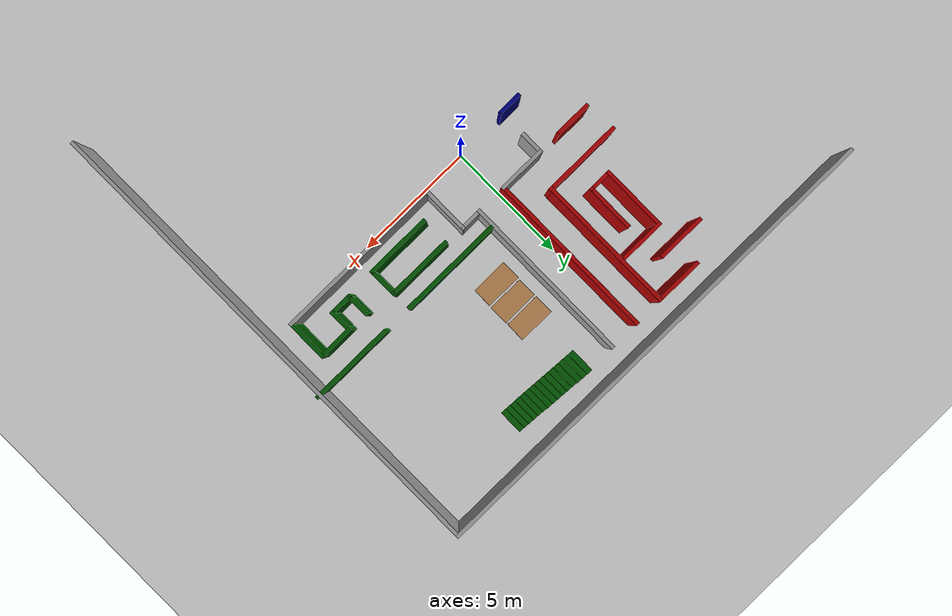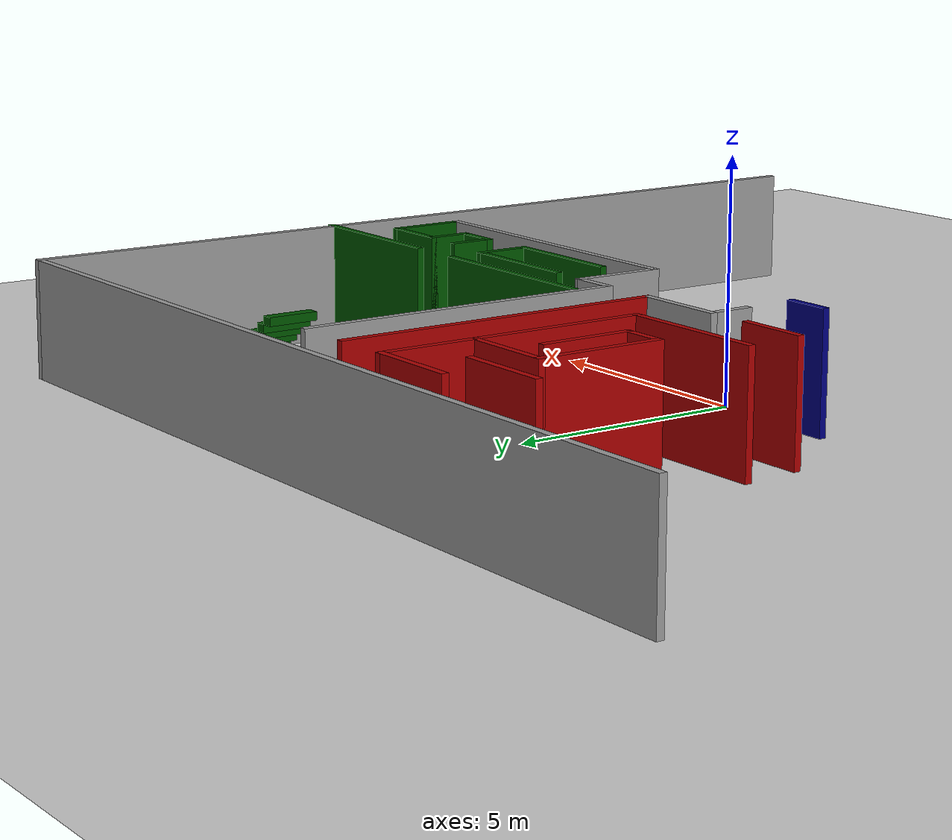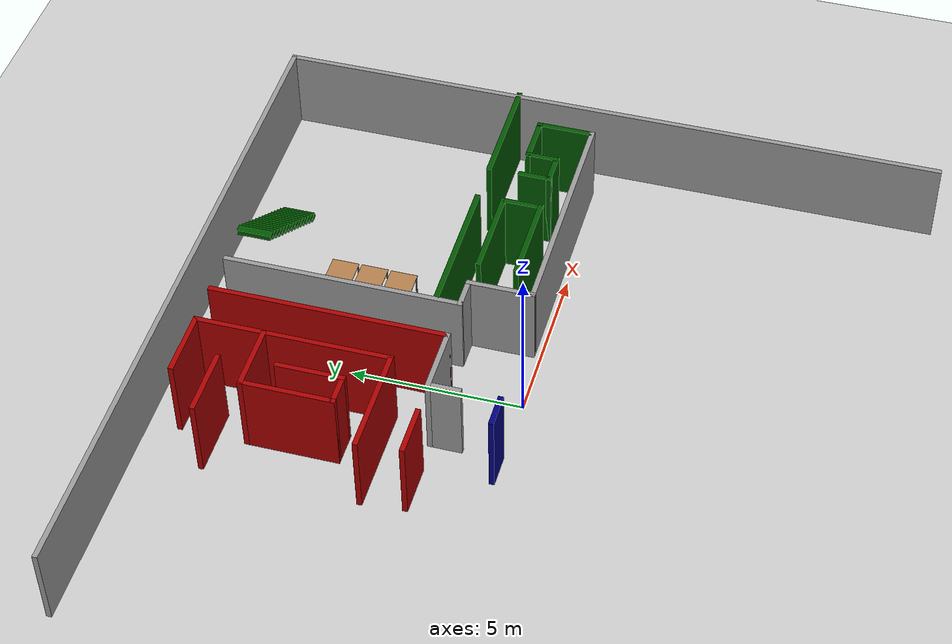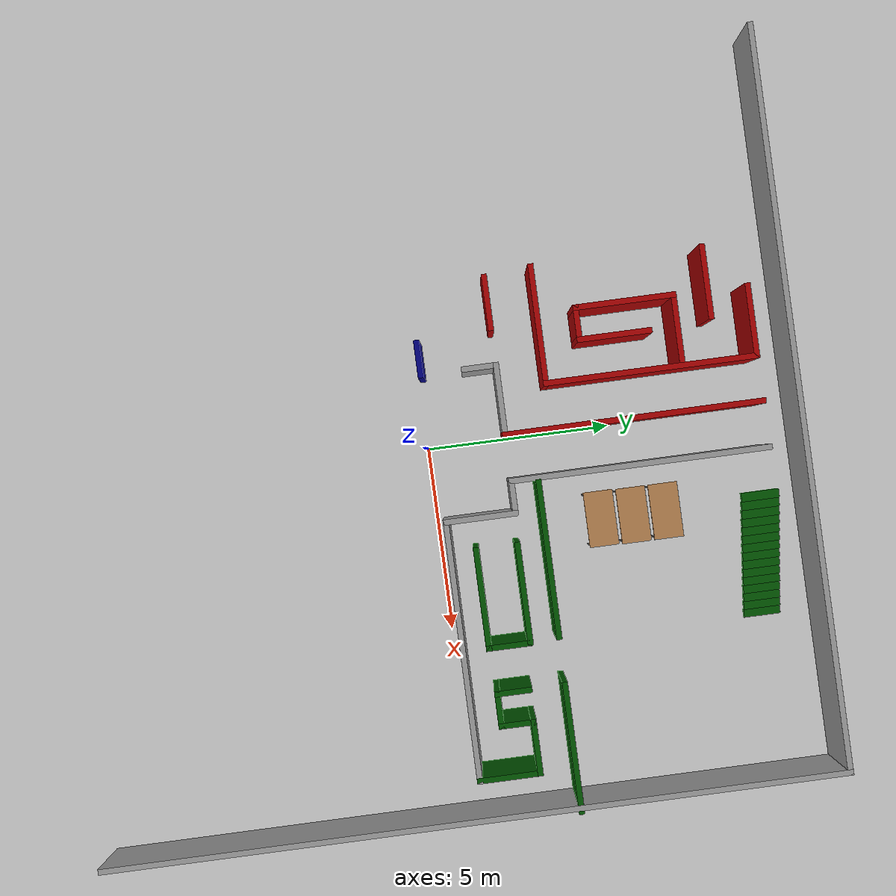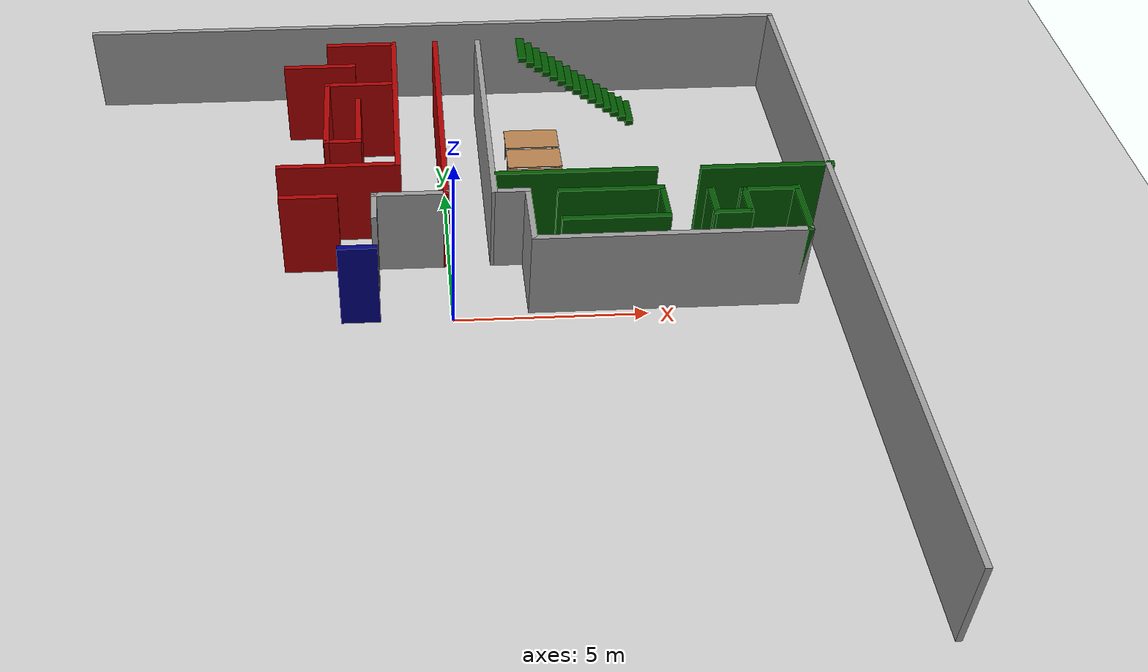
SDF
<sdf version="1.7">
 <world name="default">
  <model name="ground_plane">
   <static>1</static>
   <link name="link">
    <collision name="collision">
     <geometry><plane><normal>0 0 1</normal><size>100 100</size></plane></geometry>
     <surface><friction><ode><mu>100</mu><mu2>50</mu2></ode></friction></surface>
    </collision>
    <visual name="visual">
     <cast_shadows>0</cast_shadows>
     <geometry><plane><normal>0 0 1</normal><size>100 100</size></plane></geometry>
     <material>
      <script><uri>file://media/materials/scripts/gazebo.material</uri><name>Gazebo/Grey</name></script>
     </material>
    </visual>
   </link>
  </model>
  <model name="labyrinthe">
   <pose>-0.001061 -0.00174 0 0 -0 0</pose>
   <link name="Stairs_1">
    <visual name="Stairs_1_Visual_0">
     <pose>5.63847 8.54811 0.083333 0 -0 -1.5708</pose>
     <geometry><box><size>1 0.233333 0.166667</size></box></geometry>
     <material>
      <script><uri>file://media/materials/scripts/gazebo.material</uri><name>Gazebo/Grey</name></script>
      <ambient>0 0.333333 0 1</ambient>
     </material>
     <meta><layer>0</layer></meta>
    </visual>
    <collision name="Stairs_1_Collision_0">
     <geometry><box><size>1 0.233333 0.166667</size></box></geometry>
     <pose>5.63847 8.54811 0.083333 0 -0 -1.5708</pose>
    </collision>
    <visual name="Stairs_1_Visual_1">
     <pose>5.40514 8.54811 0.25 0 -0 -1.5708</pose>
     <geometry><box><size>1 0.233333 0.166667</size></box></geometry>
     <material>
      <script><uri>file://media/materials/scripts/gazebo.material</uri><name>Gazebo/Grey</name></script>
      <ambient>0 0.333333 0 1</ambient>
     </material>
     <meta><layer>0</layer></meta>
    </visual>
    <collision name="Stairs_1_Collision_1">
     <geometry><box><size>1 0.233333 0.166667</size></box></geometry>
     <pose>5.40514 8.54811 0.25 0 -0 -1.5708</pose>
    </collision>
    <visual name="Stairs_1_Visual_2">
     <pose>5.1718 8.54811 0.416667 0 -0 -1.5708</pose>
     <geometry><box><size>1 0.233333 0.166667</size></box></geometry>
     <material>
      <script><uri>file://media/materials/scripts/gazebo.material</uri><name>Gazebo/Grey</name></script>
      <ambient>0 0.333333 0 1</ambient>
     </material>
     <meta><layer>0</layer></meta>
    </visual>
    <collision name="Stairs_1_Collision_2">
     <geometry><box><size>1 0.233333 0.166667</size></box></geometry>
     <pose>5.1718 8.54811 0.416667 0 -0 -1.5708</pose>
    </collision>
    <visual name="Stairs_1_Visual_3">
     <pose>4.93847 8.54811 0.583333 0 -0 -1.5708</pose>
     <geometry><box><size>1 0.233333 0.166667</size></box></geometry>
     <material>
      <script><uri>file://media/materials/scripts/gazebo.material</uri><name>Gazebo/Grey</name></script>
      <ambient>0 0.333333 0 1</ambient>
     </material>
     <meta><layer>0</layer></meta>
    </visual>
    <collision name="Stairs_1_Collision_3">
     <geometry><box><size>1 0.233333 0.166667</size></box></geometry>
     <pose>4.93847 8.54811 0.583333 0 -0 -1.5708</pose>
    </collision>
    <visual name="Stairs_1_Visual_4">
     <pose>4.70514 8.54811 0.75 0 -0 -1.5708</pose>
     <geometry><box><size>1 0.233333 0.166667</size></box></geometry>
     <material>
      <script><uri>file://media/materials/scripts/gazebo.material</uri><name>Gazebo/Grey</name></script>
      <ambient>0 0.333333 0 1</ambient>
     </material>
     <meta><layer>0</layer></meta>
    </visual>
    <collision name="Stairs_1_Collision_4">
     <geometry><box><size>1 0.233333 0.166667</size></box></geometry>
     <pose>4.70514 8.54811 0.75 0 -0 -1.5708</pose>
    </collision>
    <visual name="Stairs_1_Visual_5">
     <pose>4.4718 8.54811 0.916667 0 -0 -1.5708</pose>
     <geometry><box><size>1 0.233333 0.166667</size></box></geometry>
     <material>
      <script><uri>file://media/materials/scripts/gazebo.material</uri><name>Gazebo/Grey</name></script>
      <ambient>0 0.333333 0 1</ambient>
     </material>
     <meta><layer>0</layer></meta>
    </visual>
    <collision name="Stairs_1_Collision_5">
     <geometry><box><size>1 0.233333 0.166667</size></box></geometry>
     <pose>4.4718 8.54811 0.916667 0 -0 -1.5708</pose>
    </collision>
    <visual name="Stairs_1_Visual_6">
     <pose>4.23847 8.54811 1.08333 0 -0 -1.5708</pose>
     <geometry><box><size>1 0.233333 0.166667</size></box></geometry>
     <material>
      <script><uri>file://media/materials/scripts/gazebo.material</uri><name>Gazebo/Grey</name></script>
      <ambient>0 0.333333 0 1</ambient>
     </material>
     <meta><layer>0</layer></meta>
    </visual>
    <collision name="Stairs_1_Collision_6">
     <geometry><box><size>1 0.233333 0.166667</size></box></geometry>
     <pose>4.23847 8.54811 1.08333 0 -0 -1.5708</pose>
    </collision>
    <visual name="Stairs_1_Visual_7">
     <pose>4.00514 8.54811 1.25 0 -0 -1.5708</pose>
     <geometry><box><size>1 0.233333 0.166667</size></box></geometry>
     <material>
      <script><uri>file://media/materials/scripts/gazebo.material</uri><name>Gazebo/Grey</name></script>
      <ambient>0 0.333333 0 1</ambient>
     </material>
     <meta><layer>0</layer></meta>
    </visual>
    <collision name="Stairs_1_Collision_7">
     <geometry><box><size>1 0.233333 0.166667</size></box></geometry>
     <pose>4.00514 8.54811 1.25 0 -0 -1.5708</pose>
    </collision>
    <visual name="Stairs_1_Visual_8">
     <pose>3.77181 8.54811 1.41667 0 -0 -1.5708</pose>
     <geometry><box><size>1 0.233333 0.166667</size></box></geometry>
     <material>
      <script><uri>file://media/materials/scripts/gazebo.material</uri><name>Gazebo/Grey</name></script>
      <ambient>0 0.333333 0 1</ambient>
     </material>
     <meta><layer>0</layer></meta>
    </visual>
    <collision name="Stairs_1_Collision_8">
     <geometry><box><size>1 0.233333 0.166667</size></box></geometry>
     <pose>3.77181 8.54811 1.41667 0 -0 -1.5708</pose>
    </collision>
    <visual name="Stairs_1_Visual_9">
     <pose>3.53847 8.54811 1.58333 0 -0 -1.5708</pose>
     <geometry><box><size>1 0.233333 0.166667</size></box></geometry>
     <material>
      <script><uri>file://media/materials/scripts/gazebo.material</uri><name>Gazebo/Grey</name></script>
      <ambient>0 0.333333 0 1</ambient>
     </material>
     <meta><layer>0</layer></meta>
    </visual>
    <collision name="Stairs_1_Collision_9">
     <geometry><box><size>1 0.233333 0.166667</size></box></geometry>
     <pose>3.53847 8.54811 1.58333 0 -0 -1.5708</pose>
    </collision>
    <visual name="Stairs_1_Visual_10">
     <pose>3.30514 8.54811 1.75 0 -0 -1.5708</pose>
     <geometry><box><size>1 0.233333 0.166667</size></box></geometry>
     <material>
      <script><uri>file://media/materials/scripts/gazebo.material</uri><name>Gazebo/Grey</name></script>
      <ambient>0 0.333333 0 1</ambient>
     </material>
     <meta><layer>0</layer></meta>
    </visual>
    <collision name="Stairs_1_Collision_10">
     <geometry><box><size>1 0.233333 0.166667</size></box></geometry>
     <pose>3.30514 8.54811 1.75 0 -0 -1.5708</pose>
    </collision>
    <visual name="Stairs_1_Visual_11">
     <pose>3.0718 8.54811 1.91667 0 -0 -1.5708</pose>
     <geometry><box><size>1 0.233333 0.166667</size></box></geometry>
     <material>
      <script><uri>file://media/materials/scripts/gazebo.material</uri><name>Gazebo/Grey</name></script>
      <ambient>0 0.333333 0 1</ambient>
     </material>
     <meta><layer>0</layer></meta>
    </visual>
    <collision name="Stairs_1_Collision_11">
     <geometry><box><size>1 0.233333 0.166667</size></box></geometry>
     <pose>3.0718 8.54811 1.91667 0 -0 -1.5708</pose>
    </collision>
    <visual name="Stairs_1_Visual_12">
     <pose>2.83847 8.54811 2.08333 0 -0 -1.5708</pose>
     <geometry><box><size>1 0.233333 0.166667</size></box></geometry>
     <material>
      <script><uri>file://media/materials/scripts/gazebo.material</uri><name>Gazebo/Grey</name></script>
      <ambient>0 0.333333 0 1</ambient>
     </material>
     <meta><layer>0</layer></meta>
    </visual>
    <collision name="Stairs_1_Collision_12">
     <geometry><box><size>1 0.233333 0.166667</size></box></geometry>
     <pose>2.83847 8.54811 2.08333 0 -0 -1.5708</pose>
    </collision>
    <visual name="Stairs_1_Visual_13">
     <pose>2.60514 8.54811 2.25 0 -0 -1.5708</pose>
     <geometry><box><size>1 0.233333 0.166667</size></box></geometry>
     <material>
      <script><uri>file://media/materials/scripts/gazebo.material</uri><name>Gazebo/Grey</name></script>
      <ambient>0 0.333333 0 1</ambient>
     </material>
     <meta><layer>0</layer></meta>
    </visual>
    <collision name="Stairs_1_Collision_13">
     <geometry><box><size>1 0.233333 0.166667</size></box></geometry>
     <pose>2.60514 8.54811 2.25 0 -0 -1.5708</pose>
    </collision>
    <visual name="Stairs_1_Visual_14">
     <pose>2.3718 8.54811 2.41667 0 -0 -1.5708</pose>
     <geometry><box><size>1 0.233333 0.166667</size></box></geometry>
     <material>
      <script><uri>file://media/materials/scripts/gazebo.material</uri><name>Gazebo/Grey</name></script>
      <ambient>0 0.333333 0 1</ambient>
     </material>
     <meta><layer>0</layer></meta>
    </visual>
    <collision name="Stairs_1_Collision_14">
     <geometry><box><size>1 0.233333 0.166667</size></box></geometry>
     <pose>2.3718 8.54811 2.41667 0 -0 -1.5708</pose>
    </collision>
   </link>
   <link name="Wall_123">
    <collision name="Wall_123_Collision">
     <geometry><box><size>1 0.15 2.5</size></box></geometry>
     <pose>0 0 1.25 0 -0 0</pose>
    </collision>
    <visual name="Wall_123_Visual">
     <pose>0 0 1.25 0 -0 0</pose>
     <geometry><box><size>1 0.15 2.5</size></box></geometry>
     <material>
      <script><uri>file://media/materials/scripts/gazebo.material</uri><name>Gazebo/Grey</name></script>
      <ambient>0 0 0.498039 1</ambient>
     </material>
     <meta><layer>0</layer></meta>
    </visual>
    <pose>-2.35877 0.113732 0 0 -0 3.14159</pose>
   </link>
   <link name="Wall_20">
    <collision name="Wall_20_Collision">
     <geometry><box><size>20 0.15 2.5</size></box></geometry>
     <pose>0 0 1.25 0 -0 0</pose>
    </collision>
    <visual name="Wall_20_Visual">
     <pose>0 0 1.25 0 -0 0</pose>
     <geometry><box><size>20 0.15 2.5</size></box></geometry>
     <material>
      <script><uri>file://media/materials/scripts/gazebo.material</uri><name>Gazebo/Grey</name></script>
      <ambient>0 0 0 1</ambient>
     </material>
     <meta><layer>0</layer></meta>
    </visual>
    <pose>-0.030043 9.94053 0 0 -0 0</pose>
   </link>
   <link name="Wall_21">
    <collision name="Wall_21_Collision">
     <geometry><box><size>20 0.15 2.5</size></box></geometry>
     <pose>0 0 1.25 0 -0 0</pose>
    </collision>
    <visual name="Wall_21_Visual">
     <pose>0 0 1.25 0 -0 0</pose>
     <geometry><box><size>20 0.15 2.5</size></box></geometry>
     <material>
      <script><uri>file://media/materials/scripts/gazebo.material</uri><name>Gazebo/Grey</name></script>
      <ambient>0 0 0 1</ambient>
     </material>
     <meta><layer>0</layer></meta>
    </visual>
    <pose>9.89496 0.015532 0 0 -0 -1.5708</pose>
   </link>
   <link name="Wall_260">
    <collision name="Wall_260_Collision">
     <geometry><box><size>7 0.15 2.5</size></box></geometry>
     <pose>0 0 1.25 0 -0 0</pose>
    </collision>
    <visual name="Wall_260_Visual">
     <pose>0 0 1.25 0 -0 0</pose>
     <geometry><box><size>7 0.15 2.5</size></box></geometry>
     <material>
      <script><uri>file://media/materials/scripts/gazebo.material</uri><name>Gazebo/Grey</name></script>
      <ambient>0 0 0 1</ambient>
     </material>
     <meta><layer>0</layer></meta>
    </visual>
    <pose>5.42013 0.26331 0 0 -0 0</pose>
   </link>
   <link name="Wall_261">
    <collision name="Wall_261_Collision">
     <geometry><box><size>1.75 0.15 2.5</size></box></geometry>
     <pose>0 0 1.25 0 -0 0</pose>
    </collision>
    <visual name="Wall_261_Visual">
     <pose>0 0 1.25 0 -0 0</pose>
     <geometry><box><size>1.75 0.15 2.5</size></box></geometry>
     <material>
      <script><uri>file://media/materials/scripts/gazebo.material</uri><name>Gazebo/Grey</name></script>
      <ambient>0 0.333333 0 1</ambient>
     </material>
     <meta><layer>0</layer></meta>
    </visual>
    <pose>8.84513 1.06331 0 0 -0 1.5708</pose>
   </link>
   <link name="Wall_262">
    <collision name="Wall_262_Collision">
     <geometry><box><size>1.5 0.15 2.5</size></box></geometry>
     <pose>0 0 1.25 0 -0 0</pose>
    </collision>
    <visual name="Wall_262_Visual">
     <pose>0 0 1.25 0 -0 0</pose>
     <geometry><box><size>1.5 0.15 2.5</size></box></geometry>
     <material>
      <script><uri>file://media/materials/scripts/gazebo.material</uri><name>Gazebo/Grey</name></script>
      <ambient>0 0.333333 0 1</ambient>
     </material>
     <meta><layer>0</layer></meta>
    </visual>
    <pose>8.17013 1.86331 0 0 -0 3.14159</pose>
   </link>
   <link name="Wall_263">
    <collision name="Wall_263_Collision">
     <geometry><box><size>1 0.15 2.5</size></box></geometry>
     <pose>0 0 1.25 0 -0 0</pose>
    </collision>
    <visual name="Wall_263_Visual">
     <pose>0 0 1.25 0 -0 0</pose>
     <geometry><box><size>1 0.15 2.5</size></box></geometry>
     <material>
      <script><uri>file://media/materials/scripts/gazebo.material</uri><name>Gazebo/Grey</name></script>
      <ambient>0 0.333333 0 1</ambient>
     </material>
     <meta><layer>0</layer></meta>
    </visual>
    <pose>7.49513 1.43831 0 0 -0 -1.5708</pose>
   </link>
   <link name="Wall_264">
    <collision name="Wall_264_Collision">
     <geometry><box><size>1 0.15 2.5</size></box></geometry>
     <pose>0 0 1.25 0 -0 0</pose>
    </collision>
    <visual name="Wall_264_Visual">
     <pose>0 0 1.25 0 -0 0</pose>
     <geometry><box><size>1 0.15 2.5</size></box></geometry>
     <material>
      <script><uri>file://media/materials/scripts/gazebo.material</uri><name>Gazebo/Grey</name></script>
      <ambient>0 0.333333 0 1</ambient>
     </material>
     <meta><layer>0</layer></meta>
    </visual>
    <pose>7.07013 1.01331 0 0 -0 3.14159</pose>
   </link>
   <link name="Wall_265">
    <collision name="Wall_265_Collision">
     <geometry><box><size>1 0.15 2.5</size></box></geometry>
     <pose>0 0 1.25 0 -0 0</pose>
    </collision>
    <visual name="Wall_265_Visual">
     <pose>0 0 1.25 0 -0 0</pose>
     <geometry><box><size>1 0.15 2.5</size></box></geometry>
     <material>
      <script><uri>file://media/materials/scripts/gazebo.material</uri><name>Gazebo/Grey</name></script>
      <ambient>0 0.333333 0 1</ambient>
     </material>
     <meta><layer>0</layer></meta>
    </visual>
    <pose>6.64513 1.43831 0 0 -0 1.5708</pose>
   </link>
   <link name="Wall_267">
    <collision name="Wall_267_Collision">
     <geometry><box><size>3.5 0.15 2.5</size></box></geometry>
     <pose>0 0 1.25 0 -0 0</pose>
    </collision>
    <visual name="Wall_267_Visual">
     <pose>0 0 1.25 0 -0 0</pose>
     <geometry><box><size>3.5 0.15 2.5</size></box></geometry>
     <material>
      <script><uri>file://media/materials/scripts/gazebo.material</uri><name>Gazebo/Grey</name></script>
      <ambient>0 0.333333 0 1</ambient>
     </material>
     <meta><layer>0</layer></meta>
    </visual>
    <pose>8.31191 2.80846 0 0 -0 0</pose>
   </link>
   <link name="Wall_269">
    <collision name="Wall_269_Collision">
     <geometry><box><size>4.25 0.15 2.5</size></box></geometry>
     <pose>0 0 1.25 0 -0 0</pose>
    </collision>
    <visual name="Wall_269_Visual">
     <pose>0 0 1.25 0 -0 0</pose>
     <geometry><box><size>4.25 0.15 2.5</size></box></geometry>
     <material>
      <script><uri>file://media/materials/scripts/gazebo.material</uri><name>Gazebo/Grey</name></script>
      <ambient>0 0.333333 0 1</ambient>
     </material>
     <meta><layer>0</layer></meta>
    </visual>
    <pose>3.31731 2.82169 0 0 -0 3.14159</pose>
   </link>
   <link name="Wall_271">
    <collision name="Wall_271_Collision">
     <geometry><box><size>2.75 0.15 2.5</size></box></geometry>
     <pose>0 0 1.25 0 -0 0</pose>
    </collision>
    <visual name="Wall_271_Visual">
     <pose>0 0 1.25 0 -0 0</pose>
     <geometry><box><size>2.75 0.15 2.5</size></box></geometry>
     <material>
      <script><uri>file://media/materials/scripts/gazebo.material</uri><name>Gazebo/Grey</name></script>
      <ambient>0 0.333333 0 1</ambient>
     </material>
     <meta><layer>0</layer></meta>
    </visual>
    <pose>4.12811 2.05464 0 0 -0 0</pose>
   </link>
   <link name="Wall_272">
    <collision name="Wall_272_Collision">
     <geometry><box><size>1.25 0.15 2.5</size></box></geometry>
     <pose>0 0 1.25 0 -0 0</pose>
    </collision>
    <visual name="Wall_272_Visual">
     <pose>0 0 1.25 0 -0 0</pose>
     <geometry><box><size>1.25 0.15 2.5</size></box></geometry>
     <material>
      <script><uri>file://media/materials/scripts/gazebo.material</uri><name>Gazebo/Grey</name></script>
      <ambient>0 0.333333 0 1</ambient>
     </material>
     <meta><layer>0</layer></meta>
    </visual>
    <pose>5.42811 1.50464 0 0 -0 -1.5708</pose>
   </link>
   <link name="Wall_273">
    <collision name="Wall_273_Collision">
     <geometry><box><size>2.75 0.15 2.5</size></box></geometry>
     <pose>0 0 1.25 0 -0 0</pose>
    </collision>
    <visual name="Wall_273_Visual">
     <pose>0 0 1.25 0 -0 0</pose>
     <geometry><box><size>2.75 0.15 2.5</size></box></geometry>
     <material>
      <script><uri>file://media/materials/scripts/gazebo.material</uri><name>Gazebo/Grey</name></script>
      <ambient>0 0.333333 0 1</ambient>
     </material>
     <meta><layer>0</layer></meta>
    </visual>
    <pose>4.12811 0.954637 0 0 -0 3.14159</pose>
   </link>
   <link name="Wall_34">
    <collision name="Wall_34_Collision">
     <geometry><box><size>2 0.15 2.5</size></box></geometry>
     <pose>0 0 1.25 0 -0 0</pose>
    </collision>
    <visual name="Wall_34_Visual">
     <pose>0 0 1.25 0 -0 0</pose>
     <geometry><box><size>2 0.15 2.5</size></box></geometry>
     <material>
      <script><uri>file://media/materials/scripts/gazebo.material</uri><name>Gazebo/Grey</name></script>
      <ambient>0 0 0 1</ambient>
     </material>
     <meta><layer>0</layer></meta>
    </visual>
    <pose>-1.00876 2.11373 0 0 -0 0</pose>
   </link>
   <link name="Wall_36">
    <collision name="Wall_36_Collision">
     <geometry><box><size>1 0.15 2.5</size></box></geometry>
     <pose>0 0 1.25 0 -0 0</pose>
    </collision>
    <visual name="Wall_36_Visual">
     <pose>0 0 1.25 0 -0 0</pose>
     <geometry><box><size>1 0.15 2.5</size></box></geometry>
     <material>
      <script><uri>file://media/materials/scripts/gazebo.material</uri><name>Gazebo/Grey</name></script>
      <ambient>0 0 0 1</ambient>
     </material>
     <meta><layer>0</layer></meta>
    </visual>
    <pose>-1.93376 1.68873 0 0 -0 -1.5708</pose>
   </link>
   <link name="Wall_51">
    <collision name="Wall_51_Collision">
     <geometry><box><size>1 0.15 2.5</size></box></geometry>
     <pose>0 0 1.25 0 -0 0</pose>
    </collision>
    <visual name="Wall_51_Visual">
     <pose>0 0 1.25 0 -0 0</pose>
     <geometry><box><size>1 0.15 2.5</size></box></geometry>
     <material>
      <script><uri>file://media/materials/scripts/gazebo.material</uri><name>Gazebo/Grey</name></script>
      <ambient>0 0 0 1</ambient>
     </material>
     <meta><layer>0</layer></meta>
    </visual>
    <pose>1.56989 2.11354 0 0 -0 3.14106</pose>
   </link>
   <link name="Wall_53">
    <collision name="Wall_53_Collision">
     <geometry><box><size>2 0.15 2.5</size></box></geometry>
     <pose>0 0 1.25 0 -0 0</pose>
    </collision>
    <visual name="Wall_53_Visual">
     <pose>0 0 1.25 0 -0 0</pose>
     <geometry><box><size>2 0.15 2.5</size></box></geometry>
     <material>
      <script><uri>file://media/materials/scripts/gazebo.material</uri><name>Gazebo/Grey</name></script>
      <ambient>0 0 0 1</ambient>
     </material>
     <meta><layer>0</layer></meta>
    </visual>
    <pose>1.99513 1.18831 0 0 -0 -1.5708</pose>
   </link>
   <link name="Wall_63">
    <collision name="Wall_63_Collision">
     <geometry><box><size>7 0.15 2.5</size></box></geometry>
     <pose>0 0 1.25 0 -0 0</pose>
    </collision>
    <visual name="Wall_63_Visual">
     <pose>0 0 1.25 0 -0 0</pose>
     <geometry><box><size>7 0.15 2.5</size></box></geometry>
     <material>
      <script><uri>file://media/materials/scripts/gazebo.material</uri><name>Gazebo/Grey</name></script>
      <ambient>0 0 0 1</ambient>
     </material>
     <meta><layer>0</layer></meta>
    </visual>
    <pose>1.14465 5.53876 0 0 -0 1.5708</pose>
   </link>
   <link name="Wall_66">
    <collision name="Wall_66_Collision">
     <geometry><box><size>7 0.15 2.5</size></box></geometry>
     <pose>0 0 1.25 0 -0 0</pose>
    </collision>
    <visual name="Wall_66_Visual">
     <pose>0 0 1.25 0 -0 0</pose>
     <geometry><box><size>7 0.15 2.5</size></box></geometry>
     <material>
      <script><uri>file://media/materials/scripts/gazebo.material</uri><name>Gazebo/Grey</name></script>
      <ambient>0.666667 0 0 1</ambient>
     </material>
     <meta><layer>0</layer></meta>
    </visual>
    <pose>-0.083765 5.53873 0 0 -0 1.5708</pose>
   </link>
   <link name="Wall_68">
    <collision name="Wall_68_Collision">
     <geometry><box><size>5.75 0.15 2.5</size></box></geometry>
     <pose>0 0 1.25 0 -0 0</pose>
    </collision>
    <visual name="Wall_68_Visual">
     <pose>0 0 1.25 0 -0 0</pose>
     <geometry><box><size>5.75 0.15 2.5</size></box></geometry>
     <material>
      <script><uri>file://media/materials/scripts/gazebo.material</uri><name>Gazebo/Grey</name></script>
      <ambient>0.666667 0 0 1</ambient>
     </material>
     <meta><layer>0</layer></meta>
    </visual>
    <pose>-1.28486 6.15809 0 0 -0 -1.5708</pose>
   </link>
   <link name="Wall_69">
    <collision name="Wall_69_Collision">
     <geometry><box><size>3.25 0.15 2.5</size></box></geometry>
     <pose>0 0 1.25 0 -0 0</pose>
    </collision>
    <visual name="Wall_69_Visual">
     <pose>0 0 1.25 0 -0 0</pose>
     <geometry><box><size>3.25 0.15 2.5</size></box></geometry>
     <material>
      <script><uri>file://media/materials/scripts/gazebo.material</uri><name>Gazebo/Grey</name></script>
      <ambient>0.666667 0 0 1</ambient>
     </material>
     <meta><layer>0</layer></meta>
    </visual>
    <pose>-2.83486 3.35809 0 0 -0 3.14159</pose>
   </link>
   <link name="Wall_71">
    <collision name="Wall_71_Collision">
     <geometry><box><size>2 0.15 2.5</size></box></geometry>
     <pose>0 0 1.25 0 -0 0</pose>
    </collision>
    <visual name="Wall_71_Visual">
     <pose>0 0 1.25 0 -0 0</pose>
     <geometry><box><size>2 0.15 2.5</size></box></geometry>
     <material>
      <script><uri>file://media/materials/scripts/gazebo.material</uri><name>Gazebo/Grey</name></script>
      <ambient>0.666667 0 0 1</ambient>
     </material>
     <meta><layer>0</layer></meta>
    </visual>
    <pose>-2.20986 8.95809 0 0 -0 3.14159</pose>
   </link>
   <link name="Wall_76">
    <collision name="Wall_76_Collision">
     <geometry><box><size>2 0.15 2.5</size></box></geometry>
     <pose>0 0 1.25 0 -0 0</pose>
    </collision>
    <visual name="Wall_76_Visual">
     <pose>0 0 1.25 0 -0 0</pose>
     <geometry><box><size>2 0.15 2.5</size></box></geometry>
     <material>
      <script><uri>file://media/materials/scripts/gazebo.material</uri><name>Gazebo/Grey</name></script>
      <ambient>0.666667 0 0 1</ambient>
     </material>
     <meta><layer>0</layer></meta>
    </visual>
    <pose>-3.38839 7.90009 0 0 -0 0</pose>
   </link>
   <link name="Wall_81">
    <collision name="Wall_81_Collision">
     <geometry><box><size>2 0.15 2.5</size></box></geometry>
     <pose>0 0 1.25 0 -0 0</pose>
    </collision>
    <visual name="Wall_81_Visual">
     <pose>0 0 1.25 0 -0 0</pose>
     <geometry><box><size>2 0.15 2.5</size></box></geometry>
     <material>
      <script><uri>file://media/materials/scripts/gazebo.material</uri><name>Gazebo/Grey</name></script>
      <ambient>0.666667 0 0 1</ambient>
     </material>
     <meta><layer>0</layer></meta>
    </visual>
    <pose>-2.23631 6.98756 0 0 -0 3.14159</pose>
   </link>
   <link name="Wall_82">
    <collision name="Wall_82_Collision">
     <geometry><box><size>2.75 0.15 2.5</size></box></geometry>
     <pose>0 0 1.25 0 -0 0</pose>
    </collision>
    <visual name="Wall_82_Visual">
     <pose>0 0 1.25 0 -0 0</pose>
     <geometry><box><size>2.75 0.15 2.5</size></box></geometry>
     <material>
      <script><uri>file://media/materials/scripts/gazebo.material</uri><name>Gazebo/Grey</name></script>
      <ambient>0.666667 0 0 1</ambient>
     </material>
     <meta><layer>0</layer></meta>
    </visual>
    <pose>-3.16131 5.68756 0 0 -0 -1.5708</pose>
   </link>
   <link name="Wall_83">
    <collision name="Wall_83_Collision">
     <geometry><box><size>1 0.15 2.5</size></box></geometry>
     <pose>0 0 1.25 0 -0 0</pose>
    </collision>
    <visual name="Wall_83_Visual">
     <pose>0 0 1.25 0 -0 0</pose>
     <geometry><box><size>1 0.15 2.5</size></box></geometry>
     <material>
      <script><uri>file://media/materials/scripts/gazebo.material</uri><name>Gazebo/Grey</name></script>
      <ambient>0.666667 0 0 1</ambient>
     </material>
     <meta><layer>0</layer></meta>
    </visual>
    <pose>-2.73631 4.38756 0 0 -0 0</pose>
   </link>
   <link name="Wall_84">
    <collision name="Wall_84_Collision">
     <geometry><box><size>2 0.15 2.5</size></box></geometry>
     <pose>0 0 1.25 0 -0 0</pose>
    </collision>
    <visual name="Wall_84_Visual">
     <pose>0 0 1.25 0 -0 0</pose>
     <geometry><box><size>2 0.15 2.5</size></box></geometry>
     <material>
      <script><uri>file://media/materials/scripts/gazebo.material</uri><name>Gazebo/Grey</name></script>
      <ambient>0.666667 0 0 1</ambient>
     </material>
     <meta><layer>0</layer></meta>
    </visual>
    <pose>-2.31131 5.31256 0 0 -0 1.5708</pose>
   </link>
   <link name="Wall_99">
    <collision name="Wall_99_Collision">
     <geometry><box><size>1.5 0.15 2.5</size></box></geometry>
     <pose>0 0 1.25 0 -0 0</pose>
    </collision>
    <visual name="Wall_99_Visual">
     <pose>0 0 1.25 0 -0 0</pose>
     <geometry><box><size>1.5 0.15 2.5</size></box></geometry>
     <material>
      <script><uri>file://media/materials/scripts/gazebo.material</uri><name>Gazebo/Grey</name></script>
      <ambient>0.666667 0 0 1</ambient>
     </material>
     <meta><layer>0</layer></meta>
    </visual>
    <pose>-3.59976 2.10754 0 0 -0 3.14159</pose>
   </link>
   <static>1</static>
  </model>
  <model name="table">
   <static>1</static>
   <link name="link">
    <collision name="surface">
     <pose>0 0 1 0 -0 0</pose>
     <geometry><box><size>1.5 0.8 0.03</size></box></geometry>
     <surface><friction><ode><mu>0.6</mu><mu2>0.6</mu2></ode></friction></surface>
    </collision>
    <visual name="visual1">
     <pose>0 0 1 0 -0 0</pose>
     <geometry><box><size>1.5 0.8 0.03</size></box></geometry>
     <material>
      <script><uri>file://media/materials/scripts/gazebo.material</uri><name>Gazebo/Wood</name></script>
     </material>
    </visual>
    <collision name="front_left_leg">
     <pose>0.68 0.38 0.5 0 -0 0</pose>
     <geometry><cylinder><radius>0.02</radius><length>1</length></cylinder></geometry>
    </collision>
    <visual name="front_left_leg">
     <pose>0.68 0.38 0.5 0 -0 0</pose>
     <geometry><cylinder><radius>0.02</radius><length>1</length></cylinder></geometry>
     <material>
      <script><uri>file://media/materials/scripts/gazebo.material</uri><name>Gazebo/Grey</name></script>
     </material>
    </visual>
    <collision name="front_right_leg">
     <pose>0.68 -0.38 0.5 0 -0 0</pose>
     <geometry><cylinder><radius>0.02</radius><length>1</length></cylinder></geometry>
    </collision>
    <visual name="front_right_leg">
     <pose>0.68 -0.38 0.5 0 -0 0</pose>
     <geometry><cylinder><radius>0.02</radius><length>1</length></cylinder></geometry>
     <material>
      <script><uri>file://media/materials/scripts/gazebo.material</uri><name>Gazebo/Grey</name></script>
     </material>
    </visual>
    <collision name="back_right_leg">
     <pose>-0.68 -0.38 0.5 0 -0 0</pose>
     <geometry><cylinder><radius>0.02</radius><length>1</length></cylinder></geometry>
    </collision>
    <visual name="back_right_leg">
     <pose>-0.68 -0.38 0.5 0 -0 0</pose>
     <geometry><cylinder><radius>0.02</radius><length>1</length></cylinder></geometry>
     <material>
      <script><uri>file://media/materials/scripts/gazebo.material</uri><name>Gazebo/Grey</name></script>
     </material>
    </visual>
    <collision name="back_left_leg">
     <pose>-0.68 0.38 0.5 0 -0 0</pose>
     <geometry><cylinder><radius>0.02</radius><length>1</length></cylinder></geometry>
    </collision>
    <visual name="back_left_leg">
     <pose>-0.68 0.38 0.5 0 -0 0</pose>
     <geometry><cylinder><radius>0.02</radius><length>1</length></cylinder></geometry>
     <material>
      <script><uri>file://media/materials/scripts/gazebo.material</uri><name>Gazebo/Grey</name></script>
     </material>
    </visual>
   </link>
   <pose>2.4871 4.4216 0 0 -0 0</pose>
  </model>
  <model name="table_0">
   <static>1</static>
   <link name="link">
    <collision name="surface">
     <pose>0 0 1 0 -0 0</pose>
     <geometry><box><size>1.5 0.8 0.03</size></box></geometry>
     <surface><friction><ode><mu>0.6</mu><mu2>0.6</mu2></ode></friction></surface>
    </collision>
    <visual name="visual1">
     <pose>0 0 1 0 -0 0</pose>
     <geometry><box><size>1.5 0.8 0.03</size></box></geometry>
     <material>
      <script><uri>file://media/materials/scripts/gazebo.material</uri><name>Gazebo/Wood</name></script>
     </material>
    </visual>
    <collision name="front_left_leg">
     <pose>0.68 0.38 0.5 0 -0 0</pose>
     <geometry><cylinder><radius>0.02</radius><length>1</length></cylinder></geometry>
    </collision>
    <visual name="front_left_leg">
     <pose>0.68 0.38 0.5 0 -0 0</pose>
     <geometry><cylinder><radius>0.02</radius><length>1</length></cylinder></geometry>
     <material>
      <script><uri>file://media/materials/scripts/gazebo.material</uri><name>Gazebo/Grey</name></script>
     </material>
    </visual>
    <collision name="front_right_leg">
     <pose>0.68 -0.38 0.5 0 -0 0</pose>
     <geometry><cylinder><radius>0.02</radius><length>1</length></cylinder></geometry>
    </collision>
    <visual name="front_right_leg">
     <pose>0.68 -0.38 0.5 0 -0 0</pose>
     <geometry><cylinder><radius>0.02</radius><length>1</length></cylinder></geometry>
     <material>
      <script><uri>file://media/materials/scripts/gazebo.material</uri><name>Gazebo/Grey</name></script>
     </material>
    </visual>
    <collision name="back_right_leg">
     <pose>-0.68 -0.38 0.5 0 -0 0</pose>
     <geometry><cylinder><radius>0.02</radius><length>1</length></cylinder></geometry>
    </collision>
    <visual name="back_right_leg">
     <pose>-0.68 -0.38 0.5 0 -0 0</pose>
     <geometry><cylinder><radius>0.02</radius><length>1</length></cylinder></geometry>
     <material>
      <script><uri>file://media/materials/scripts/gazebo.material</uri><name>Gazebo/Grey</name></script>
     </material>
    </visual>
    <collision name="back_left_leg">
     <pose>-0.68 0.38 0.5 0 -0 0</pose>
     <geometry><cylinder><radius>0.02</radius><length>1</length></cylinder></geometry>
    </collision>
    <visual name="back_left_leg">
     <pose>-0.68 0.38 0.5 0 -0 0</pose>
     <geometry><cylinder><radius>0.02</radius><length>1</length></cylinder></geometry>
     <material>
      <script><uri>file://media/materials/scripts/gazebo.material</uri><name>Gazebo/Grey</name></script>
     </material>
    </visual>
   </link>
   <pose>2.50344 5.30605 0 0 -0 0</pose>
  </model>
  <model name="table_1">
   <static>1</static>
   <link name="link">
    <collision name="surface">
     <pose>0 0 1 0 -0 0</pose>
     <geometry><box><size>1.5 0.8 0.03</size></box></geometry>
     <surface><friction><ode><mu>0.6</mu><mu2>0.6</mu2></ode></friction></surface>
    </collision>
    <visual name="visual1">
     <pose>0 0 1 0 -0 0</pose>
     <geometry><box><size>1.5 0.8 0.03</size></box></geometry>
     <material>
      <script><uri>file://media/materials/scripts/gazebo.material</uri><name>Gazebo/Wood</name></script>
     </material>
    </visual>
    <collision name="front_left_leg">
     <pose>0.68 0.38 0.5 0 -0 0</pose>
     <geometry><cylinder><radius>0.02</radius><length>1</length></cylinder></geometry>
    </collision>
    <visual name="front_left_leg">
     <pose>0.68 0.38 0.5 0 -0 0</pose>
     <geometry><cylinder><radius>0.02</radius><length>1</length></cylinder></geometry>
     <material>
      <script><uri>file://media/materials/scripts/gazebo.material</uri><name>Gazebo/Grey</name></script>
     </material>
    </visual>
    <collision name="front_right_leg">
     <pose>0.68 -0.38 0.5 0 -0 0</pose>
     <geometry><cylinder><radius>0.02</radius><length>1</length></cylinder></geometry>
    </collision>
    <visual name="front_right_leg">
     <pose>0.68 -0.38 0.5 0 -0 0</pose>
     <geometry><cylinder><radius>0.02</radius><length>1</length></cylinder></geometry>
     <material>
      <script><uri>file://media/materials/scripts/gazebo.material</uri><name>Gazebo/Grey</name></script>
     </material>
    </visual>
    <collision name="back_right_leg">
     <pose>-0.68 -0.38 0.5 0 -0 0</pose>
     <geometry><cylinder><radius>0.02</radius><length>1</length></cylinder></geometry>
    </collision>
    <visual name="back_right_leg">
     <pose>-0.68 -0.38 0.5 0 -0 0</pose>
     <geometry><cylinder><radius>0.02</radius><length>1</length></cylinder></geometry>
     <material>
      <script><uri>file://media/materials/scripts/gazebo.material</uri><name>Gazebo/Grey</name></script>
     </material>
    </visual>
    <collision name="back_left_leg">
     <pose>-0.68 0.38 0.5 0 -0 0</pose>
     <geometry><cylinder><radius>0.02</radius><length>1</length></cylinder></geometry>
    </collision>
    <visual name="back_left_leg">
     <pose>-0.68 0.38 0.5 0 -0 0</pose>
     <geometry><cylinder><radius>0.02</radius><length>1</length></cylinder></geometry>
     <material>
      <script><uri>file://media/materials/scripts/gazebo.material</uri><name>Gazebo/Grey</name></script>
     </material>
    </visual>
   </link>
   <pose>2.50447 6.18865 0 0 -0 0</pose>
  </model>
 </world>
</sdf>
